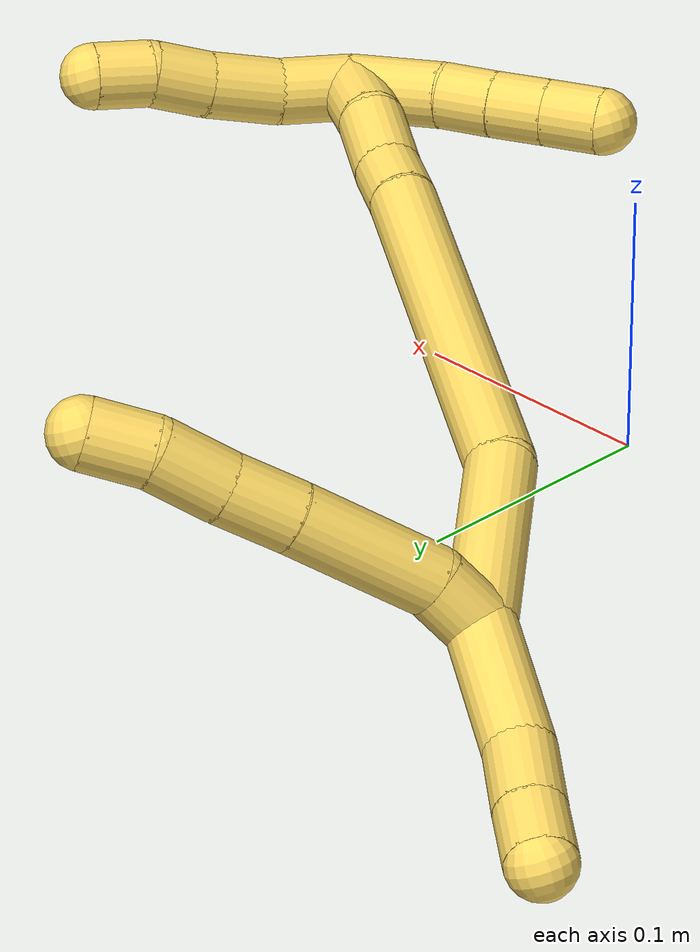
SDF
<sdf version="1.7">
 <world name="default">
  <model name="5">
   <static>0</static>
   <link name="5">
    <collision name="collision-cylinder-e_1_2_8">
     <pose>0.001086 0.005218 0.009674 -0.494637 0.098441 -0.024874</pose>
     <geometry><cylinder><radius>0.0125</radius><length>0.022091</length></cylinder></geometry>
     <surface>
      <friction><ode><mu>1.16</mu><mu2>1.16</mu2><slip1>0</slip1><slip2>0</slip2></ode></friction>
      <contact><ode><kp>1e+06</kp><kd>1</kd><max_vel>0</max_vel><min_depth>0.001</min_depth></ode></contact>
     </surface>
    </collision>
    <visual name="visual-cylinder-e_1_2_8">
     <pose>0.001086 0.005218 0.009674 -0.494637 0.098441 -0.024874</pose>
     <geometry><cylinder><radius>0.0125</radius><length>0.022091</length></cylinder></geometry>
     <material><ambient>1 0.858824 0.4 1</ambient></material>
    </visual>
    <collision name="collision-cylinder-e_2_8_9">
     <pose>0.005944 0.029171 0.037585 -0.798896 0.14331 -0.060582</pose>
     <geometry><cylinder><radius>0.0125</radius><length>0.052831</length></cylinder></geometry>
     <surface>
      <friction><ode><mu>1.16</mu><mu2>1.16</mu2><slip1>0</slip1><slip2>0</slip2></ode></friction>
      <contact><ode><kp>1e+06</kp><kd>1</kd><max_vel>0</max_vel><min_depth>0.001</min_depth></ode></contact>
     </surface>
    </collision>
    <visual name="visual-cylinder-e_2_8_9">
     <pose>0.005944 0.029171 0.037585 -0.798896 0.14331 -0.060582</pose>
     <geometry><cylinder><radius>0.0125</radius><length>0.052831</length></cylinder></geometry>
     <material><ambient>1 0.858824 0.4 1</ambient></material>
    </visual>
    <collision name="collision-cylinder-e_3_9_10">
     <pose>0.012098 0.057094 0.064408 -0.81916 0.187164 -0.081447</pose>
     <geometry><cylinder><radius>0.0125</radius><length>0.025599</length></cylinder></geometry>
     <surface>
      <friction><ode><mu>1.16</mu><mu2>1.16</mu2><slip1>0</slip1><slip2>0</slip2></ode></friction>
      <contact><ode><kp>1e+06</kp><kd>1</kd><max_vel>0</max_vel><min_depth>0.001</min_depth></ode></contact>
     </surface>
    </collision>
    <visual name="visual-cylinder-e_3_9_10">
     <pose>0.012098 0.057094 0.064408 -0.81916 0.187164 -0.081447</pose>
     <geometry><cylinder><radius>0.0125</radius><length>0.025599</length></cylinder></geometry>
     <material><ambient>1 0.858824 0.4 1</ambient></material>
    </visual>
    <collision name="collision-cylinder-e_4_10_11">
     <pose>0.016454 0.075217 0.08232 -0.764132 0.151714 -0.061058</pose>
     <geometry><cylinder><radius>0.0125</radius><length>0.026129</length></cylinder></geometry>
     <surface>
      <friction><ode><mu>1.16</mu><mu2>1.16</mu2><slip1>0</slip1><slip2>0</slip2></ode></friction>
      <contact><ode><kp>1e+06</kp><kd>1</kd><max_vel>0</max_vel><min_depth>0.001</min_depth></ode></contact>
     </surface>
    </collision>
    <visual name="visual-cylinder-e_4_10_11">
     <pose>0.016454 0.075217 0.08232 -0.764132 0.151714 -0.061058</pose>
     <geometry><cylinder><radius>0.0125</radius><length>0.026129</length></cylinder></geometry>
     <material><ambient>1 0.858824 0.4 1</ambient></material>
    </visual>
    <collision name="collision-cylinder-e_5_11_6">
     <pose>0.022289 0.093074 0.09811 -0.943567 0.337016 -0.173162</pose>
     <geometry><cylinder><radius>0.0125</radius><length>0.02335</length></cylinder></geometry>
     <surface>
      <friction><ode><mu>1.16</mu><mu2>1.16</mu2><slip1>0</slip1><slip2>0</slip2></ode></friction>
      <contact><ode><kp>1e+06</kp><kd>1</kd><max_vel>0</max_vel><min_depth>0.001</min_depth></ode></contact>
     </surface>
    </collision>
    <visual name="visual-cylinder-e_5_11_6">
     <pose>0.022289 0.093074 0.09811 -0.943567 0.337016 -0.173162</pose>
     <geometry><cylinder><radius>0.0125</radius><length>0.02335</length></cylinder></geometry>
     <material><ambient>1 0.858824 0.4 1</ambient></material>
    </visual>
    <collision name="collision-cylinder-e_1_2_12">
     <pose>-0.016177 0.008457 -0.01742 -2.68963 -0.695961 2.01178</pose>
     <geometry><cylinder><radius>0.0125</radius><length>0.050466</length></cylinder></geometry>
     <surface>
      <friction><ode><mu>1.16</mu><mu2>1.16</mu2><slip1>0</slip1><slip2>0</slip2></ode></friction>
      <contact><ode><kp>1e+06</kp><kd>1</kd><max_vel>0</max_vel><min_depth>0.001</min_depth></ode></contact>
     </surface>
    </collision>
    <visual name="visual-cylinder-e_1_2_12">
     <pose>-0.016177 0.008457 -0.01742 -2.68963 -0.695961 2.01178</pose>
     <geometry><cylinder><radius>0.0125</radius><length>0.050466</length></cylinder></geometry>
     <material><ambient>1 0.858824 0.4 1</ambient></material>
    </visual>
    <collision name="collision-cylinder-e_2_12_13">
     <pose>-0.041761 0.02335 -0.042097 -2.41609 -0.770062 1.6363</pose>
     <geometry><cylinder><radius>0.0125</radius><length>0.027022</length></cylinder></geometry>
     <surface>
      <friction><ode><mu>1.16</mu><mu2>1.16</mu2><slip1>0</slip1><slip2>0</slip2></ode></friction>
      <contact><ode><kp>1e+06</kp><kd>1</kd><max_vel>0</max_vel><min_depth>0.001</min_depth></ode></contact>
     </surface>
    </collision>
    <visual name="visual-cylinder-e_2_12_13">
     <pose>-0.041761 0.02335 -0.042097 -2.41609 -0.770062 1.6363</pose>
     <geometry><cylinder><radius>0.0125</radius><length>0.027022</length></cylinder></geometry>
     <material><ambient>1 0.858824 0.4 1</ambient></material>
    </visual>
    <collision name="collision-cylinder-e_3_13_5">
     <pose>-0.059224 0.034891 -0.055329 -2.43452 -0.797822 1.70335</pose>
     <geometry><cylinder><radius>0.0125</radius><length>0.022512</length></cylinder></geometry>
     <surface>
      <friction><ode><mu>1.16</mu><mu2>1.16</mu2><slip1>0</slip1><slip2>0</slip2></ode></friction>
      <contact><ode><kp>1e+06</kp><kd>1</kd><max_vel>0</max_vel><min_depth>0.001</min_depth></ode></contact>
     </surface>
    </collision>
    <visual name="visual-cylinder-e_3_13_5">
     <pose>-0.059224 0.034891 -0.055329 -2.43452 -0.797822 1.70335</pose>
     <geometry><cylinder><radius>0.0125</radius><length>0.022512</length></cylinder></geometry>
     <material><ambient>1 0.858824 0.4 1</ambient></material>
    </visual>
    <collision name="collision-cylinder-e_1_2_14">
     <pose>0.020367 -0.023642 0.018934 0.895508 0.591964 0.290849</pose>
     <geometry><cylinder><radius>0.0125</radius><length>0.073</length></cylinder></geometry>
     <surface>
      <friction><ode><mu>1.16</mu><mu2>1.16</mu2><slip1>0</slip1><slip2>0</slip2></ode></friction>
      <contact><ode><kp>1e+06</kp><kd>1</kd><max_vel>0</max_vel><min_depth>0.001</min_depth></ode></contact>
     </surface>
    </collision>
    <visual name="visual-cylinder-e_1_2_14">
     <pose>0.020367 -0.023642 0.018934 0.895508 0.591964 0.290849</pose>
     <geometry><cylinder><radius>0.0125</radius><length>0.073</length></cylinder></geometry>
     <material><ambient>1 0.858824 0.4 1</ambient></material>
    </visual>
    <collision name="collision-cylinder-e_2_14_15">
     <pose>0.095965 -0.074194 0.077659 0.59465 0.854969 0.277394</pose>
     <geometry><cylinder><radius>0.0125</radius><length>0.146396</length></cylinder></geometry>
     <surface>
      <friction><ode><mu>1.16</mu><mu2>1.16</mu2><slip1>0</slip1><slip2>0</slip2></ode></friction>
      <contact><ode><kp>1e+06</kp><kd>1</kd><max_vel>0</max_vel><min_depth>0.001</min_depth></ode></contact>
     </surface>
    </collision>
    <visual name="visual-cylinder-e_2_14_15">
     <pose>0.095965 -0.074194 0.077659 0.59465 0.854969 0.277394</pose>
     <geometry><cylinder><radius>0.0125</radius><length>0.146396</length></cylinder></geometry>
     <material><ambient>1 0.858824 0.4 1</ambient></material>
    </visual>
    <collision name="collision-cylinder-e_3_15_16">
     <pose>0.159689 -0.104626 0.122415 0.616898 0.948807 0.324359</pose>
     <geometry><cylinder><radius>0.0125</radius><length>0.020899</length></cylinder></geometry>
     <surface>
      <friction><ode><mu>1.16</mu><mu2>1.16</mu2><slip1>0</slip1><slip2>0</slip2></ode></friction>
      <contact><ode><kp>1e+06</kp><kd>1</kd><max_vel>0</max_vel><min_depth>0.001</min_depth></ode></contact>
     </surface>
    </collision>
    <visual name="visual-cylinder-e_3_15_16">
     <pose>0.159689 -0.104626 0.122415 0.616898 0.948807 0.324359</pose>
     <geometry><cylinder><radius>0.0125</radius><length>0.020899</length></cylinder></geometry>
     <material><ambient>1 0.858824 0.4 1</ambient></material>
    </visual>
    <collision name="collision-cylinder-e_4_16_17">
     <pose>0.17918 -0.113806 0.135603 0.602684 0.8339 0.273605</pose>
     <geometry><cylinder><radius>0.0125</radius><length>0.029702</length></cylinder></geometry>
     <surface>
      <friction><ode><mu>1.16</mu><mu2>1.16</mu2><slip1>0</slip1><slip2>0</slip2></ode></friction>
      <contact><ode><kp>1e+06</kp><kd>1</kd><max_vel>0</max_vel><min_depth>0.001</min_depth></ode></contact>
     </surface>
    </collision>
    <visual name="visual-cylinder-e_4_16_17">
     <pose>0.17918 -0.113806 0.135603 0.602684 0.8339 0.273605</pose>
     <geometry><cylinder><radius>0.0125</radius><length>0.029702</length></cylinder></geometry>
     <material><ambient>1 0.858824 0.4 1</ambient></material>
    </visual>
    <collision name="collision-cylinder-e_5_17_1">
     <pose>0.203069 -0.124474 0.149635 0.711761 1.0339 0.416516</pose>
     <geometry><cylinder><radius>0.0125</radius><length>0.030003</length></cylinder></geometry>
     <surface>
      <friction><ode><mu>1.16</mu><mu2>1.16</mu2><slip1>0</slip1><slip2>0</slip2></ode></friction>
      <contact><ode><kp>1e+06</kp><kd>1</kd><max_vel>0</max_vel><min_depth>0.001</min_depth></ode></contact>
     </surface>
    </collision>
    <visual name="visual-cylinder-e_5_17_1">
     <pose>0.203069 -0.124474 0.149635 0.711761 1.0339 0.416516</pose>
     <geometry><cylinder><radius>0.0125</radius><length>0.030003</length></cylinder></geometry>
     <material><ambient>1 0.858824 0.4 1</ambient></material>
    </visual>
    <collision name="collision-cylinder-e_1_1_18">
     <pose>0.220298 -0.116609 0.159016 -1.30027 0.31391 -0.23953</pose>
     <geometry><cylinder><radius>0.0125</radius><length>0.0281</length></cylinder></geometry>
     <surface>
      <friction><ode><mu>1.16</mu><mu2>1.16</mu2><slip1>0</slip1><slip2>0</slip2></ode></friction>
      <contact><ode><kp>1e+06</kp><kd>1</kd><max_vel>0</max_vel><min_depth>0.001</min_depth></ode></contact>
     </surface>
    </collision>
    <visual name="visual-cylinder-e_1_1_18">
     <pose>0.220298 -0.116609 0.159016 -1.30027 0.31391 -0.23953</pose>
     <geometry><cylinder><radius>0.0125</radius><length>0.0281</length></cylinder></geometry>
     <material><ambient>1 0.858824 0.4 1</ambient></material>
    </visual>
    <collision name="collision-cylinder-e_2_18_19">
     <pose>0.22693 -0.091104 0.16828 -1.14726 0.164139 -0.10619</pose>
     <geometry><cylinder><radius>0.0125</radius><length>0.028079</length></cylinder></geometry>
     <surface>
      <friction><ode><mu>1.16</mu><mu2>1.16</mu2><slip1>0</slip1><slip2>0</slip2></ode></friction>
      <contact><ode><kp>1e+06</kp><kd>1</kd><max_vel>0</max_vel><min_depth>0.001</min_depth></ode></contact>
     </surface>
    </collision>
    <visual name="visual-cylinder-e_2_18_19">
     <pose>0.22693 -0.091104 0.16828 -1.14726 0.164139 -0.10619</pose>
     <geometry><cylinder><radius>0.0125</radius><length>0.028079</length></cylinder></geometry>
     <material><ambient>1 0.858824 0.4 1</ambient></material>
    </visual>
    <collision name="collision-cylinder-e_3_19_20">
     <pose>0.23065 -0.068793 0.179408 -1.0593 0.127686 -0.07482</pose>
     <geometry><cylinder><radius>0.0125</radius><length>0.022394</length></cylinder></geometry>
     <surface>
      <friction><ode><mu>1.16</mu><mu2>1.16</mu2><slip1>0</slip1><slip2>0</slip2></ode></friction>
      <contact><ode><kp>1e+06</kp><kd>1</kd><max_vel>0</max_vel><min_depth>0.001</min_depth></ode></contact>
     </surface>
    </collision>
    <visual name="visual-cylinder-e_3_19_20">
     <pose>0.23065 -0.068793 0.179408 -1.0593 0.127686 -0.07482</pose>
     <geometry><cylinder><radius>0.0125</radius><length>0.022394</length></cylinder></geometry>
     <material><ambient>1 0.858824 0.4 1</ambient></material>
    </visual>
    <collision name="collision-cylinder-e_4_20_4">
     <pose>0.234574 -0.049092 0.187707 -1.29241 0.235362 -0.177872</pose>
     <geometry><cylinder><radius>0.0125</radius><length>0.021427</length></cylinder></geometry>
     <surface>
      <friction><ode><mu>1.16</mu><mu2>1.16</mu2><slip1>0</slip1><slip2>0</slip2></ode></friction>
      <contact><ode><kp>1e+06</kp><kd>1</kd><max_vel>0</max_vel><min_depth>0.001</min_depth></ode></contact>
     </surface>
    </collision>
    <visual name="visual-cylinder-e_4_20_4">
     <pose>0.234574 -0.049092 0.187707 -1.29241 0.235362 -0.177872</pose>
     <geometry><cylinder><radius>0.0125</radius><length>0.021427</length></cylinder></geometry>
     <material><ambient>1 0.858824 0.4 1</ambient></material>
    </visual>
    <collision name="collision-cylinder-e_1_1_21">
     <pose>0.201191 -0.139727 0.149594 2.08988 -0.896894 -1.38439</pose>
     <geometry><cylinder><radius>0.0125</radius><length>0.037799</length></cylinder></geometry>
     <surface>
      <friction><ode><mu>1.16</mu><mu2>1.16</mu2><slip1>0</slip1><slip2>0</slip2></ode></friction>
      <contact><ode><kp>1e+06</kp><kd>1</kd><max_vel>0</max_vel><min_depth>0.001</min_depth></ode></contact>
     </surface>
    </collision>
    <visual name="visual-cylinder-e_1_1_21">
     <pose>0.201191 -0.139727 0.149594 2.08988 -0.896894 -1.38439</pose>
     <geometry><cylinder><radius>0.0125</radius><length>0.037799</length></cylinder></geometry>
     <material><ambient>1 0.858824 0.4 1</ambient></material>
    </visual>
    <collision name="collision-cylinder-e_2_21_22">
     <pose>0.179023 -0.155658 0.139683 2.19051 -0.813867 -1.39373</pose>
     <geometry><cylinder><radius>0.0125</radius><length>0.02036</length></cylinder></geometry>
     <surface>
      <friction><ode><mu>1.16</mu><mu2>1.16</mu2><slip1>0</slip1><slip2>0</slip2></ode></friction>
      <contact><ode><kp>1e+06</kp><kd>1</kd><max_vel>0</max_vel><min_depth>0.001</min_depth></ode></contact>
     </surface>
    </collision>
    <visual name="visual-cylinder-e_2_21_22">
     <pose>0.179023 -0.155658 0.139683 2.19051 -0.813867 -1.39373</pose>
     <geometry><cylinder><radius>0.0125</radius><length>0.02036</length></cylinder></geometry>
     <material><ambient>1 0.858824 0.4 1</ambient></material>
    </visual>
    <collision name="collision-cylinder-e_3_22_23">
     <pose>0.164189 -0.167299 0.13167 2.15711 -0.805234 -1.34233</pose>
     <geometry><cylinder><radius>0.0125</radius><length>0.02062</length></cylinder></geometry>
     <surface>
      <friction><ode><mu>1.16</mu><mu2>1.16</mu2><slip1>0</slip1><slip2>0</slip2></ode></friction>
      <contact><ode><kp>1e+06</kp><kd>1</kd><max_vel>0</max_vel><min_depth>0.001</min_depth></ode></contact>
     </surface>
    </collision>
    <visual name="visual-cylinder-e_3_22_23">
     <pose>0.164189 -0.167299 0.13167 2.15711 -0.805234 -1.34233</pose>
     <geometry><cylinder><radius>0.0125</radius><length>0.02062</length></cylinder></geometry>
     <material><ambient>1 0.858824 0.4 1</ambient></material>
    </visual>
    <collision name="collision-cylinder-e_4_23_3">
     <pose>0.149106 -0.179324 0.123573 2.16955 -0.805176 -1.35689</pose>
     <geometry><cylinder><radius>0.0125</radius><length>0.021221</length></cylinder></geometry>
     <surface>
      <friction><ode><mu>1.16</mu><mu2>1.16</mu2><slip1>0</slip1><slip2>0</slip2></ode></friction>
      <contact><ode><kp>1e+06</kp><kd>1</kd><max_vel>0</max_vel><min_depth>0.001</min_depth></ode></contact>
     </surface>
    </collision>
    <visual name="visual-cylinder-e_4_23_3">
     <pose>0.149106 -0.179324 0.123573 2.16955 -0.805176 -1.35689</pose>
     <geometry><cylinder><radius>0.0125</radius><length>0.021221</length></cylinder></geometry>
     <material><ambient>1 0.858824 0.4 1</ambient></material>
    </visual>
    <collision name="collision-sphere-3">
     <pose>0.141457 -0.185398 0.119428 0 -0 0</pose>
     <geometry><sphere><radius>0.0125</radius></sphere></geometry>
     <surface>
      <friction><ode><mu>1.16</mu><mu2>1.16</mu2><slip1>0</slip1><slip2>0</slip2></ode></friction>
      <contact><ode><kp>1e+06</kp><kd>1</kd><max_vel>0</max_vel><min_depth>0.001</min_depth></ode></contact>
     </surface>
    </collision>
    <visual name="visual-sphere-3">
     <pose>0.141457 -0.185398 0.119428 0 -0 0</pose>
     <geometry><sphere><radius>0.0125</radius></sphere></geometry>
     <material><ambient>1 0.858824 0.4 1</ambient></material>
    </visual>
    <collision name="collision-sphere-23">
     <pose>0.156756 -0.173251 0.127717 0 -0 0</pose>
     <geometry><sphere><radius>0.0125</radius></sphere></geometry>
     <surface>
      <friction><ode><mu>1.16</mu><mu2>1.16</mu2><slip1>0</slip1><slip2>0</slip2></ode></friction>
      <contact><ode><kp>1e+06</kp><kd>1</kd><max_vel>0</max_vel><min_depth>0.001</min_depth></ode></contact>
     </surface>
    </collision>
    <visual name="visual-sphere-23">
     <pose>0.156756 -0.173251 0.127717 0 -0 0</pose>
     <geometry><sphere><radius>0.0125</radius></sphere></geometry>
     <material><ambient>1 0.858824 0.4 1</ambient></material>
    </visual>
    <collision name="collision-sphere-22">
     <pose>0.171623 -0.161348 0.135622 0 -0 0</pose>
     <geometry><sphere><radius>0.0125</radius></sphere></geometry>
     <surface>
      <friction><ode><mu>1.16</mu><mu2>1.16</mu2><slip1>0</slip1><slip2>0</slip2></ode></friction>
      <contact><ode><kp>1e+06</kp><kd>1</kd><max_vel>0</max_vel><min_depth>0.001</min_depth></ode></contact>
     </surface>
    </collision>
    <visual name="visual-sphere-22">
     <pose>0.171623 -0.161348 0.135622 0 -0 0</pose>
     <geometry><sphere><radius>0.0125</radius></sphere></geometry>
     <material><ambient>1 0.858824 0.4 1</ambient></material>
    </visual>
    <collision name="collision-sphere-21">
     <pose>0.186423 -0.149967 0.143743 0 -0 0</pose>
     <geometry><sphere><radius>0.0125</radius></sphere></geometry>
     <surface>
      <friction><ode><mu>1.16</mu><mu2>1.16</mu2><slip1>0</slip1><slip2>0</slip2></ode></friction>
      <contact><ode><kp>1e+06</kp><kd>1</kd><max_vel>0</max_vel><min_depth>0.001</min_depth></ode></contact>
     </surface>
    </collision>
    <visual name="visual-sphere-21">
     <pose>0.186423 -0.149967 0.143743 0 -0 0</pose>
     <geometry><sphere><radius>0.0125</radius></sphere></geometry>
     <material><ambient>1 0.858824 0.4 1</ambient></material>
    </visual>
    <collision name="collision-sphere-4">
     <pose>0.237073 -0.039074 0.19057 0 -0 0</pose>
     <geometry><sphere><radius>0.0125</radius></sphere></geometry>
     <surface>
      <friction><ode><mu>1.16</mu><mu2>1.16</mu2><slip1>0</slip1><slip2>0</slip2></ode></friction>
      <contact><ode><kp>1e+06</kp><kd>1</kd><max_vel>0</max_vel><min_depth>0.001</min_depth></ode></contact>
     </surface>
    </collision>
    <visual name="visual-sphere-4">
     <pose>0.237073 -0.039074 0.19057 0 -0 0</pose>
     <geometry><sphere><radius>0.0125</radius></sphere></geometry>
     <material><ambient>1 0.858824 0.4 1</ambient></material>
    </visual>
    <collision name="collision-sphere-20">
     <pose>0.232076 -0.059109 0.184844 0 -0 0</pose>
     <geometry><sphere><radius>0.0125</radius></sphere></geometry>
     <surface>
      <friction><ode><mu>1.16</mu><mu2>1.16</mu2><slip1>0</slip1><slip2>0</slip2></ode></friction>
      <contact><ode><kp>1e+06</kp><kd>1</kd><max_vel>0</max_vel><min_depth>0.001</min_depth></ode></contact>
     </surface>
    </collision>
    <visual name="visual-sphere-20">
     <pose>0.232076 -0.059109 0.184844 0 -0 0</pose>
     <geometry><sphere><radius>0.0125</radius></sphere></geometry>
     <material><ambient>1 0.858824 0.4 1</ambient></material>
    </visual>
    <collision name="collision-sphere-6">
     <pose>0.02615 0.101995 0.104577 0 -0 0</pose>
     <geometry><sphere><radius>0.0125</radius></sphere></geometry>
     <surface>
      <friction><ode><mu>1.16</mu><mu2>1.16</mu2><slip1>0</slip1><slip2>0</slip2></ode></friction>
      <contact><ode><kp>1e+06</kp><kd>1</kd><max_vel>0</max_vel><min_depth>0.001</min_depth></ode></contact>
     </surface>
    </collision>
    <visual name="visual-sphere-6">
     <pose>0.02615 0.101995 0.104577 0 -0 0</pose>
     <geometry><sphere><radius>0.0125</radius></sphere></geometry>
     <material><ambient>1 0.858824 0.4 1</ambient></material>
    </visual>
    <collision name="collision-sphere-11">
     <pose>0.018429 0.084153 0.091644 0 -0 0</pose>
     <geometry><sphere><radius>0.0125</radius></sphere></geometry>
     <surface>
      <friction><ode><mu>1.16</mu><mu2>1.16</mu2><slip1>0</slip1><slip2>0</slip2></ode></friction>
      <contact><ode><kp>1e+06</kp><kd>1</kd><max_vel>0</max_vel><min_depth>0.001</min_depth></ode></contact>
     </surface>
    </collision>
    <visual name="visual-sphere-11">
     <pose>0.018429 0.084153 0.091644 0 -0 0</pose>
     <geometry><sphere><radius>0.0125</radius></sphere></geometry>
     <material><ambient>1 0.858824 0.4 1</ambient></material>
    </visual>
    <collision name="collision-sphere-10">
     <pose>0.01448 0.066282 0.072996 0 -0 0</pose>
     <geometry><sphere><radius>0.0125</radius></sphere></geometry>
     <surface>
      <friction><ode><mu>1.16</mu><mu2>1.16</mu2><slip1>0</slip1><slip2>0</slip2></ode></friction>
      <contact><ode><kp>1e+06</kp><kd>1</kd><max_vel>0</max_vel><min_depth>0.001</min_depth></ode></contact>
     </surface>
    </collision>
    <visual name="visual-sphere-10">
     <pose>0.01448 0.066282 0.072996 0 -0 0</pose>
     <geometry><sphere><radius>0.0125</radius></sphere></geometry>
     <material><ambient>1 0.858824 0.4 1</ambient></material>
    </visual>
    <collision name="collision-sphere-9">
     <pose>0.009716 0.047906 0.055821 0 -0 0</pose>
     <geometry><sphere><radius>0.0125</radius></sphere></geometry>
     <surface>
      <friction><ode><mu>1.16</mu><mu2>1.16</mu2><slip1>0</slip1><slip2>0</slip2></ode></friction>
      <contact><ode><kp>1e+06</kp><kd>1</kd><max_vel>0</max_vel><min_depth>0.001</min_depth></ode></contact>
     </surface>
    </collision>
    <visual name="visual-sphere-9">
     <pose>0.009716 0.047906 0.055821 0 -0 0</pose>
     <geometry><sphere><radius>0.0125</radius></sphere></geometry>
     <material><ambient>1 0.858824 0.4 1</ambient></material>
    </visual>
    <collision name="collision-sphere-2">
     <geometry><sphere><radius>0.0125</radius></sphere></geometry>
     <surface>
      <friction><ode><mu>1.16</mu><mu2>1.16</mu2><slip1>0</slip1><slip2>0</slip2></ode></friction>
      <contact><ode><kp>1e+06</kp><kd>1</kd><max_vel>0</max_vel><min_depth>0.001</min_depth></ode></contact>
     </surface>
    </collision>
    <visual name="visual-sphere-2">
     <geometry><sphere><radius>0.0125</radius></sphere></geometry>
     <material><ambient>1 0.858824 0.4 1</ambient></material>
    </visual>
    <collision name="collision-sphere-19">
     <pose>0.229224 -0.078477 0.173972 0 -0 0</pose>
     <geometry><sphere><radius>0.0125</radius></sphere></geometry>
     <surface>
      <friction><ode><mu>1.16</mu><mu2>1.16</mu2><slip1>0</slip1><slip2>0</slip2></ode></friction>
      <contact><ode><kp>1e+06</kp><kd>1</kd><max_vel>0</max_vel><min_depth>0.001</min_depth></ode></contact>
     </surface>
    </collision>
    <visual name="visual-sphere-19">
     <pose>0.229224 -0.078477 0.173972 0 -0 0</pose>
     <geometry><sphere><radius>0.0125</radius></sphere></geometry>
     <material><ambient>1 0.858824 0.4 1</ambient></material>
    </visual>
    <collision name="collision-sphere-8">
     <pose>0.002171 0.010436 0.019349 0 -0 0</pose>
     <geometry><sphere><radius>0.0125</radius></sphere></geometry>
     <surface>
      <friction><ode><mu>1.16</mu><mu2>1.16</mu2><slip1>0</slip1><slip2>0</slip2></ode></friction>
      <contact><ode><kp>1e+06</kp><kd>1</kd><max_vel>0</max_vel><min_depth>0.001</min_depth></ode></contact>
     </surface>
    </collision>
    <visual name="visual-sphere-8">
     <pose>0.002171 0.010436 0.019349 0 -0 0</pose>
     <geometry><sphere><radius>0.0125</radius></sphere></geometry>
     <material><ambient>1 0.858824 0.4 1</ambient></material>
    </visual>
    <collision name="collision-sphere-12">
     <pose>-0.032355 0.016914 -0.034841 0 -0 0</pose>
     <geometry><sphere><radius>0.0125</radius></sphere></geometry>
     <surface>
      <friction><ode><mu>1.16</mu><mu2>1.16</mu2><slip1>0</slip1><slip2>0</slip2></ode></friction>
      <contact><ode><kp>1e+06</kp><kd>1</kd><max_vel>0</max_vel><min_depth>0.001</min_depth></ode></contact>
     </surface>
    </collision>
    <visual name="visual-sphere-12">
     <pose>-0.032355 0.016914 -0.034841 0 -0 0</pose>
     <geometry><sphere><radius>0.0125</radius></sphere></geometry>
     <material><ambient>1 0.858824 0.4 1</ambient></material>
    </visual>
    <collision name="collision-sphere-13">
     <pose>-0.051167 0.029785 -0.049354 0 -0 0</pose>
     <geometry><sphere><radius>0.0125</radius></sphere></geometry>
     <surface>
      <friction><ode><mu>1.16</mu><mu2>1.16</mu2><slip1>0</slip1><slip2>0</slip2></ode></friction>
      <contact><ode><kp>1e+06</kp><kd>1</kd><max_vel>0</max_vel><min_depth>0.001</min_depth></ode></contact>
     </surface>
    </collision>
    <visual name="visual-sphere-13">
     <pose>-0.051167 0.029785 -0.049354 0 -0 0</pose>
     <geometry><sphere><radius>0.0125</radius></sphere></geometry>
     <material><ambient>1 0.858824 0.4 1</ambient></material>
    </visual>
    <collision name="collision-sphere-5">
     <pose>-0.067282 0.039997 -0.061305 0 -0 0</pose>
     <geometry><sphere><radius>0.0125</radius></sphere></geometry>
     <surface>
      <friction><ode><mu>1.16</mu><mu2>1.16</mu2><slip1>0</slip1><slip2>0</slip2></ode></friction>
      <contact><ode><kp>1e+06</kp><kd>1</kd><max_vel>0</max_vel><min_depth>0.001</min_depth></ode></contact>
     </surface>
    </collision>
    <visual name="visual-sphere-5">
     <pose>-0.067282 0.039997 -0.061305 0 -0 0</pose>
     <geometry><sphere><radius>0.0125</radius></sphere></geometry>
     <material><ambient>1 0.858824 0.4 1</ambient></material>
    </visual>
    <collision name="collision-sphere-14">
     <pose>0.040733 -0.047283 0.037869 0 -0 0</pose>
     <geometry><sphere><radius>0.0125</radius></sphere></geometry>
     <surface>
      <friction><ode><mu>1.16</mu><mu2>1.16</mu2><slip1>0</slip1><slip2>0</slip2></ode></friction>
      <contact><ode><kp>1e+06</kp><kd>1</kd><max_vel>0</max_vel><min_depth>0.001</min_depth></ode></contact>
     </surface>
    </collision>
    <visual name="visual-sphere-14">
     <pose>0.040733 -0.047283 0.037869 0 -0 0</pose>
     <geometry><sphere><radius>0.0125</radius></sphere></geometry>
     <material><ambient>1 0.858824 0.4 1</ambient></material>
    </visual>
    <collision name="collision-sphere-15">
     <pose>0.151196 -0.101104 0.117449 0 -0 0</pose>
     <geometry><sphere><radius>0.0125</radius></sphere></geometry>
     <surface>
      <friction><ode><mu>1.16</mu><mu2>1.16</mu2><slip1>0</slip1><slip2>0</slip2></ode></friction>
      <contact><ode><kp>1e+06</kp><kd>1</kd><max_vel>0</max_vel><min_depth>0.001</min_depth></ode></contact>
     </surface>
    </collision>
    <visual name="visual-sphere-15">
     <pose>0.151196 -0.101104 0.117449 0 -0 0</pose>
     <geometry><sphere><radius>0.0125</radius></sphere></geometry>
     <material><ambient>1 0.858824 0.4 1</ambient></material>
    </visual>
    <collision name="collision-sphere-16">
     <pose>0.168182 -0.108149 0.127382 0 -0 0</pose>
     <geometry><sphere><radius>0.0125</radius></sphere></geometry>
     <surface>
      <friction><ode><mu>1.16</mu><mu2>1.16</mu2><slip1>0</slip1><slip2>0</slip2></ode></friction>
      <contact><ode><kp>1e+06</kp><kd>1</kd><max_vel>0</max_vel><min_depth>0.001</min_depth></ode></contact>
     </surface>
    </collision>
    <visual name="visual-sphere-16">
     <pose>0.168182 -0.108149 0.127382 0 -0 0</pose>
     <geometry><sphere><radius>0.0125</radius></sphere></geometry>
     <material><ambient>1 0.858824 0.4 1</ambient></material>
    </visual>
    <collision name="collision-sphere-17">
     <pose>0.190178 -0.119463 0.143825 0 -0 0</pose>
     <geometry><sphere><radius>0.0125</radius></sphere></geometry>
     <surface>
      <friction><ode><mu>1.16</mu><mu2>1.16</mu2><slip1>0</slip1><slip2>0</slip2></ode></friction>
      <contact><ode><kp>1e+06</kp><kd>1</kd><max_vel>0</max_vel><min_depth>0.001</min_depth></ode></contact>
     </surface>
    </collision>
    <visual name="visual-sphere-17">
     <pose>0.190178 -0.119463 0.143825 0 -0 0</pose>
     <geometry><sphere><radius>0.0125</radius></sphere></geometry>
     <material><ambient>1 0.858824 0.4 1</ambient></material>
    </visual>
    <collision name="collision-sphere-1">
     <pose>0.215959 -0.129486 0.155445 0 -0 0</pose>
     <geometry><sphere><radius>0.0125</radius></sphere></geometry>
     <surface>
      <friction><ode><mu>1.16</mu><mu2>1.16</mu2><slip1>0</slip1><slip2>0</slip2></ode></friction>
      <contact><ode><kp>1e+06</kp><kd>1</kd><max_vel>0</max_vel><min_depth>0.001</min_depth></ode></contact>
     </surface>
    </collision>
    <visual name="visual-sphere-1">
     <pose>0.215959 -0.129486 0.155445 0 -0 0</pose>
     <geometry><sphere><radius>0.0125</radius></sphere></geometry>
     <material><ambient>1 0.858824 0.4 1</ambient></material>
    </visual>
    <collision name="collision-sphere-18">
     <pose>0.224636 -0.103732 0.162587 0 -0 0</pose>
     <geometry><sphere><radius>0.0125</radius></sphere></geometry>
     <surface>
      <friction><ode><mu>1.16</mu><mu2>1.16</mu2><slip1>0</slip1><slip2>0</slip2></ode></friction>
      <contact><ode><kp>1e+06</kp><kd>1</kd><max_vel>0</max_vel><min_depth>0.001</min_depth></ode></contact>
     </surface>
    </collision>
    <visual name="visual-sphere-18">
     <pose>0.224636 -0.103732 0.162587 0 -0 0</pose>
     <geometry><sphere><radius>0.0125</radius></sphere></geometry>
     <material><ambient>1 0.858824 0.4 1</ambient></material>
    </visual>
    <inertial>
     <pose>0.092214 -0.04923 0.079898 0 -0 0</pose>
     <mass>0.75</mass>
     <inertia><ixx>0.0003</ixx><ixy>0</ixy><ixz>0</ixz><iyy>0.000377</iyy><iyz>0</iyz><izz>-0.0001</izz></inertia>
    </inertial>
   </link>
   <pose>-0.099196 0.179849 0.043101 -0.093713 0.432635 -0.219435</pose>
  </model>
 </world>
</sdf>
